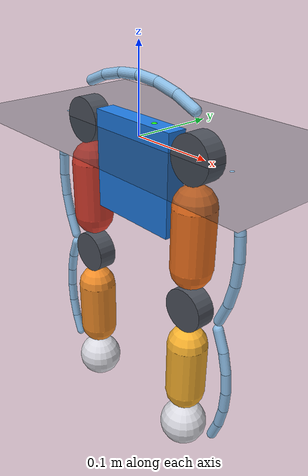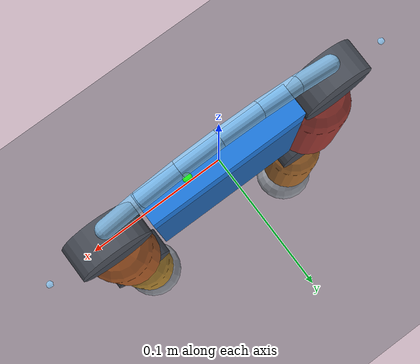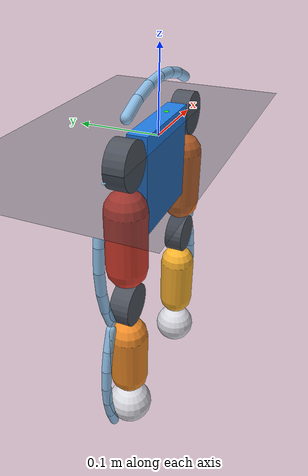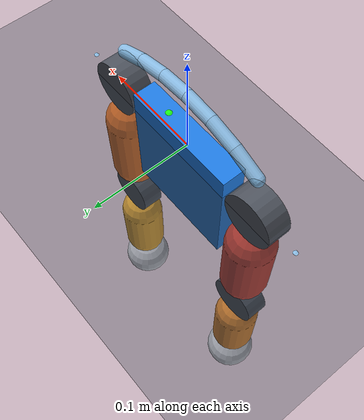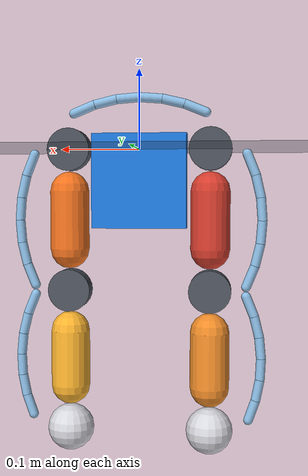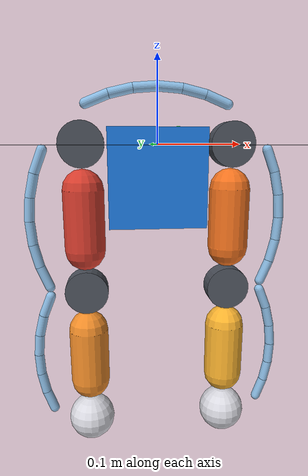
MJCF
<mujoco model="curl_robot_2d">

  <!-- 使用弧度和 SI 单位，重力沿 -z。 -->
  <compiler angle="radian" autolimits="true"/>
  <option timestep="0.001" gravity="0 0 -9.81"
          integrator="implicitfast" cone="elliptic"
          iterations="20" ls_iterations="10"/>

  <!-- 以下设置只影响渲染，不影响动力学。 -->
  <visual>
    <global azimuth="90" elevation="0" offwidth="960" offheight="720"/>
    <rgba com="0.1 1 0.1 1" contactpoint="1 0.2 0.1 1"
          contactforce="1 0.7 0.1 1"/>
  </visual>

  <!-- 程序生成的天空和地面纹理；项目不依赖外部 mesh。 -->
  <asset>
    <texture type="skybox" builtin="gradient" rgb1=".18 .23 .30"
             rgb2=".02 .03 .05" width="512" height="512"/>
    <texture name="grid" type="2d" builtin="checker" width="512"
             height="512" rgb1=".18 .22 .27" rgb2=".10 .13 .17"/>
    <material name="ground" texture="grid" texrepeat="1 1"
              texuniform="true" reflectance="0.05"/>
  </asset>

  <default>
    <!--
      bit 1 = 地面，bit 2 = 结构代理，bit 4 = 弧壳。
      结构和弧壳都与地面以及非相邻机器人刚体碰撞；MuJoCo 默认
      过滤同一 body 和父子 body，避免关节两侧的预期邻接误碰。
    -->
    <joint limited="true"/>
    <geom contype="0" conaffinity="1" condim="3"
          friction="0.8 0.02 0.01"
          solref="0.01 1" solimp="0.9 0.95 0.001"/>
    <default class="hip_joint">
      <!--
        左右两个同步髋电机合并为一个二维自由度。弧壳端部已经缩短，
        collision-compatible range 恢复为源模型建议安全范围。
      -->
      <joint damping="0.02"
             armature="0.0032"
             range="-1.12 2.41"/>
    </default>
    <default class="knee_joint">
      <!-- 等效膝关节正角度表示向内蜷缩。 -->
      <joint damping="0.02"
             armature="0.0032"
             range="-0.61 2.69"/>
    </default>
    <default class="paired_servo">
      <!--
        左右电机对的等效伺服：最大力矩 +/-6 N m，
        PD 增益取两个源电机之和。
      -->
      <general forcelimited="true" forcerange="-6 6"
               ctrllimited="true"
               gainprm="10 0 0"
               biastype="affine"
               biasprm="0 -10 -0.2"/>
    </default>
    <default class="rolling_shell">
      <!--
        第一版弧壳由短 capsule 拼接。body 已显式给出 inertial，
        因而这些 geom 目前只改变外形和接触，不增加质量或惯量。
      -->
      <geom type="capsule" size="0.006"
            contype="4" conaffinity="7"
            solref="0.003 1" solimp="0.95 0.99 0.001"
            group="1" rgba="0.55 0.78 0.95 0.88"/>
    </default>
    <default class="structure_collision">
      <!-- 有限厚度结构代理；参与地面与选择性机器人自碰撞。 -->
      <geom contype="2" conaffinity="7"
            solref="0.003 1" solimp="0.95 0.99 0.001"/>
    </default>
  </default>

  <worldbody>
    <!-- 固定侧视相机沿 +y 观察 x-z 平面。 -->
    <light name="key" pos="-0.4 -1.0 1.2" dir="0.2 0.8 -1"
           diffuse="0.9 0.9 0.9"/>
    <camera name="side" pos="0 -0.75 0.18"
            xyaxes="1 0 0 0 0 1"/>

    <!-- 地面是当前唯一 contype=1 的碰撞物体。 -->
    <geom name="floor" type="plane" size="2 2 0.05"
          contype="1" conaffinity="1" material="ground"/>

    <!--
      Torso 是五连杆树的根。简化 capsule 的中心线正好连接前后髋
      锚点，因此 Torso 边与四条腿边等长。
    -->
    <body name="torso" pos="0 0 0">
      <!-- 平面复合根：x slide + z slide + 绕 y 的 hinge。 -->
      <joint name="root_x" type="slide" axis="1 0 0" limited="false"
             damping="0.01"/>
      <joint name="root_z" type="slide" axis="0 0 1" limited="false"
             damping="0.01"/>
      <joint name="root_pitch" type="hinge" axis="0 1 0" limited="false"
             damping="0.01"/>
      <inertial pos="0.025 0 0.015"
                mass="1.506"
                diaginertia="0.0085 0.0085 0.0024"/>
      <geom name="torso_proxy" type="box" class="structure_collision"
            pos="0 0 -0.04"
            size="0.06 0.012 0.06"
            rgba="0.12 0.48 0.88 1"/>
      <geom name="torso_shell_00" class="rolling_shell"
            fromto="-0.084 0 0.04556380091 -0.05712080748 0 0.05641014695"/>
      <geom name="torso_shell_01" class="rolling_shell"
            fromto="-0.05712080748 0 0.05641014695 -0.02889983531 0 0.06302157212"/>
      <geom name="torso_shell_02" class="rolling_shell"
            fromto="-0.02889983531 0 0.06302157212 0 0 0.06524277266"/>
      <geom name="torso_shell_03" class="rolling_shell"
            fromto="0 0 0.06524277266 0.02889983531 0 0.06302157212"/>
      <geom name="torso_shell_04" class="rolling_shell"
            fromto="0.02889983531 0 0.06302157212 0.05712080748 0 0.05641014695"/>
      <geom name="torso_shell_05" class="rolling_shell"
            fromto="0.05712080748 0 0.05641014695 0.084 0 0.04556380091"/>
      <site name="torso_com" type="sphere"
            pos="0.025 0 0.015"
            size="0.006" rgba="0.1 1 0.1 1"/>

      <!--
        前腿链：髋关节正转使膝向外（+x），膝关节正转使足端向内。
      -->
      <body name="front_thigh" pos="0.09 0 0">
        <joint name="front_hip" type="hinge" axis="0 -1 0"
               class="hip_joint"/>
        <inertial pos="0 0 -0.0573059111"
                  mass="0.732"
                  diaginertia="0.002673 0.002673 0.0002"/>
        <geom name="front_thigh_proxy" type="capsule" class="structure_collision"
              fromto="0 0 -0.053 0 0 -0.127"
              size="0.025"
              rgba="0.95 0.45 0.12 1"/>
        <geom name="front_hip_motor" type="cylinder" class="structure_collision"
              size="0.027 0.012"
              euler="1.570796327 0 0" rgba="0.30 0.32 0.36 1"/>
        <geom name="front_thigh_shell_00" class="rolling_shell"
              fromto="0.04556380091 0 -0.006 0.05641014695 0 -0.03287919252"/>
        <geom name="front_thigh_shell_01" class="rolling_shell"
              fromto="0.05641014695 0 -0.03287919252 0.06302157212 0 -0.06110016469"/>
        <geom name="front_thigh_shell_02" class="rolling_shell"
              fromto="0.06302157212 0 -0.06110016469 0.06524277266 0 -0.09"/>
        <geom name="front_thigh_shell_03" class="rolling_shell"
              fromto="0.06524277266 0 -0.09 0.06302157212 0 -0.1188998353"/>
        <geom name="front_thigh_shell_04" class="rolling_shell"
              fromto="0.06302157212 0 -0.1188998353 0.05641014695 0 -0.1471208075"/>
        <geom name="front_thigh_shell_05" class="rolling_shell"
              fromto="0.05641014695 0 -0.1471208075 0.04556380091 0 -0.174"/>
        <site name="front_hip_site" type="sphere" size="0.006"
              rgba="1 0.85 0.1 1"/>
        <site name="front_thigh_com" type="sphere"
              pos="0 0 -0.0573059111"
              size="0.005" rgba="0.1 1 0.1 1"/>

        <body name="front_shank" pos="0 0 -0.18">
          <joint name="front_knee" type="hinge" axis="0 1 0"
                 class="knee_joint"/>
          <inertial pos="0 0 -0.0897967059"
                    mass="0.1"
                    diaginertia="0.000155075 0.000155075 2e-05"/>
          <geom name="front_shank_proxy" type="capsule" class="structure_collision"
                fromto="0 0 -0.053 0 0 -0.124"
                size="0.025"
                rgba="0.98 0.70 0.18 1"/>
          <geom name="front_knee_motor" type="cylinder" class="structure_collision"
                size="0.027 0.012"
                euler="1.570796327 0 0" rgba="0.30 0.32 0.36 1"/>
          <geom name="front_shank_shell_00" class="rolling_shell"
                fromto="0.04556380091 0 -0.006 0.05589975364 0 -0.03129260547"/>
          <geom name="front_shank_shell_01" class="rolling_shell"
                fromto="0.05589975364 0 -0.03129260547 0.06248318646 0 -0.05781064127"/>
          <geom name="front_shank_shell_02" class="rolling_shell"
                fromto="0.06248318646 0 -0.05781064127 0.06517667991 0 -0.08500058248"/>
          <geom name="front_shank_shell_03" class="rolling_shell"
                fromto="0.06517667991 0 -0.08500058248 0.0639240113 0 -0.1122948792"/>
          <geom name="front_shank_shell_04" class="rolling_shell"
                fromto="0.0639240113 0 -0.1122948792 0.05875132823 0 -0.1391238031"/>
          <geom name="front_shank_shell_05" class="rolling_shell"
                fromto="0.05875132823 0 -0.1391238031 0.04976660283 0 -0.1649273401"/>
          <geom name="front_foot_proxy" type="sphere" class="structure_collision"
                pos="0 0 -0.18"
                size="0.03"
                rgba="0.85 0.85 0.88 1"/>
          <site name="front_knee_site" type="sphere" size="0.006"
                rgba="1 0.85 0.1 1"/>
          <site name="front_shank_com" type="sphere"
                pos="0 0 -0.0897967059"
                size="0.005" rgba="0.1 1 0.1 1"/>
          <site name="front_foot_site"
                pos="0 0 -0.18" size="0.004"/>
        </body>
      </body>

      <!--
        后腿链通过反转两个 hinge 轴镜像前腿，因此前后腿可以共用
        相同的等效关节角约定。
      -->
      <body name="rear_thigh" pos="-0.09 0 0">
        <joint name="rear_hip" type="hinge" axis="0 1 0"
               class="hip_joint"/>
        <inertial pos="0 0 -0.0573059111"
                  mass="0.732"
                  diaginertia="0.002673 0.002673 0.0002"/>
        <geom name="rear_thigh_proxy" type="capsule" class="structure_collision"
              fromto="0 0 -0.053 0 0 -0.127"
              size="0.025"
              rgba="0.84 0.24 0.18 1"/>
        <geom name="rear_hip_motor" type="cylinder" class="structure_collision"
              size="0.027 0.012"
              euler="1.570796327 0 0" rgba="0.30 0.32 0.36 1"/>
        <geom name="rear_thigh_shell_00" class="rolling_shell"
              fromto="-0.04556380091 0 -0.006 -0.05641014695 0 -0.03287919252"/>
        <geom name="rear_thigh_shell_01" class="rolling_shell"
              fromto="-0.05641014695 0 -0.03287919252 -0.06302157212 0 -0.06110016469"/>
        <geom name="rear_thigh_shell_02" class="rolling_shell"
              fromto="-0.06302157212 0 -0.06110016469 -0.06524277266 0 -0.09"/>
        <geom name="rear_thigh_shell_03" class="rolling_shell"
              fromto="-0.06524277266 0 -0.09 -0.06302157212 0 -0.1188998353"/>
        <geom name="rear_thigh_shell_04" class="rolling_shell"
              fromto="-0.06302157212 0 -0.1188998353 -0.05641014695 0 -0.1471208075"/>
        <geom name="rear_thigh_shell_05" class="rolling_shell"
              fromto="-0.05641014695 0 -0.1471208075 -0.04556380091 0 -0.174"/>
        <site name="rear_hip_site" type="sphere" size="0.006"
              rgba="1 0.85 0.1 1"/>
        <site name="rear_thigh_com" type="sphere"
              pos="0 0 -0.0573059111"
              size="0.005" rgba="0.1 1 0.1 1"/>

        <body name="rear_shank" pos="0 0 -0.18">
          <joint name="rear_knee" type="hinge" axis="0 -1 0"
                 class="knee_joint"/>
          <inertial pos="0 0 -0.0897967059"
                    mass="0.1"
                    diaginertia="0.000155075 0.000155075 2e-05"/>
          <geom name="rear_shank_proxy" type="capsule" class="structure_collision"
                fromto="0 0 -0.053 0 0 -0.124"
                size="0.025"
                rgba="0.94 0.55 0.16 1"/>
          <geom name="rear_knee_motor" type="cylinder" class="structure_collision"
                size="0.027 0.012"
                euler="1.570796327 0 0" rgba="0.30 0.32 0.36 1"/>
          <geom name="rear_shank_shell_00" class="rolling_shell"
                fromto="-0.04556380091 0 -0.006 -0.05589975364 0 -0.03129260547"/>
          <geom name="rear_shank_shell_01" class="rolling_shell"
                fromto="-0.05589975364 0 -0.03129260547 -0.06248318646 0 -0.05781064127"/>
          <geom name="rear_shank_shell_02" class="rolling_shell"
                fromto="-0.06248318646 0 -0.05781064127 -0.06517667991 0 -0.08500058248"/>
          <geom name="rear_shank_shell_03" class="rolling_shell"
                fromto="-0.06517667991 0 -0.08500058248 -0.0639240113 0 -0.1122948792"/>
          <geom name="rear_shank_shell_04" class="rolling_shell"
                fromto="-0.0639240113 0 -0.1122948792 -0.05875132823 0 -0.1391238031"/>
          <geom name="rear_shank_shell_05" class="rolling_shell"
                fromto="-0.05875132823 0 -0.1391238031 -0.04976660283 0 -0.1649273401"/>
          <geom name="rear_foot_proxy" type="sphere" class="structure_collision"
                pos="0 0 -0.18"
                size="0.03"
                rgba="0.85 0.85 0.88 1"/>
          <site name="rear_knee_site" type="sphere" size="0.006"
                rgba="1 0.85 0.1 1"/>
          <site name="rear_shank_com" type="sphere"
                pos="0 0 -0.0897967059"
                size="0.005" rgba="0.1 1 0.1 1"/>
          <site name="rear_foot_site"
                pos="0 0 -0.18" size="0.004"/>
        </body>
      </body>
    </body>
  </worldbody>

  <contact>
    <!--
      compact 中允许两个有限尺寸足端表面接触。显式 pair 使用更硬的
      内部接触参数，减少软接触导致的数值穿透；并不把足端焊接。
    -->
    <pair name="front_rear_foot_contact"
          geom1="front_foot_proxy" geom2="rear_foot_proxy"
          condim="3" friction="0.8 0.02 0.01"
          solref="0.002 1" solimp="0.97 0.995 0.001"/>
  </contact>

  <!-- 四个成对位置伺服；ctrl 表示目标关节角。 -->
  <actuator>
    <general name="front_hip_servo" joint="front_hip"
             class="paired_servo"
             ctrlrange="-1.12 2.41"/>
    <general name="front_knee_servo" joint="front_knee"
             class="paired_servo"
             ctrlrange="-0.61 2.69"/>
    <general name="rear_hip_servo" joint="rear_hip"
             class="paired_servo"
             ctrlrange="-1.12 2.41"/>
    <general name="rear_knee_servo" joint="rear_knee"
             class="paired_servo"
             ctrlrange="-0.61 2.69"/>
  </actuator>

  <!--
    同一模型中的刚性实验模式。四个约束默认关闭，不影响正常 servo
    仿真；被动刚性基准脚本在运行时通过 data.eq_active 开启它们，
    并同时关闭 actuator。joint2 省略时，polycoef[0] 是相对 qpos0
    的固定目标角。
  -->
  <equality>
    <joint name="lock_front_hip_compact" joint1="front_hip"
           polycoef="0.3141592654 0 0 0 0"
           active="false" solref="0.004 1"
           solimp="0.999 0.9999 0.001"/>
    <joint name="lock_front_knee_compact" joint1="front_knee"
           polycoef="1.011720272 0 0 0 0"
           active="false" solref="0.004 1"
           solimp="0.999 0.9999 0.001"/>
    <joint name="lock_rear_hip_compact" joint1="rear_hip"
           polycoef="0.3141592654 0 0 0 0"
           active="false" solref="0.004 1"
           solimp="0.999 0.9999 0.001"/>
    <joint name="lock_rear_knee_compact" joint1="rear_knee"
           polycoef="1.011720272 0 0 0 0"
           active="false" solref="0.004 1"
           solimp="0.999 0.9999 0.001"/>
  </equality>

  <!-- 用于诊断和未来 RL 观测的最小传感器集合。 -->
  <sensor>
    <framepos name="torso_position" objtype="body" objname="torso"/>
    <framelinvel name="torso_velocity" objtype="body" objname="torso"/>
    <frameangvel name="torso_angular_velocity" objtype="body" objname="torso"/>
    <jointpos name="front_hip_position" joint="front_hip"/>
    <jointpos name="front_knee_position" joint="front_knee"/>
    <jointpos name="rear_hip_position" joint="rear_hip"/>
    <jointpos name="rear_knee_position" joint="rear_knee"/>
  </sensor>

  <keyframe>
    <!-- 展开姿态：两条腿竖直，两个足端球与地面相切。 -->
    <key name="open"
         qpos="0 0.39 0 0 0 0 0"
         ctrl="0 0 0 0"/>
    <!--
      二维行走检查姿态：前足支撑，后足摆动。它只用于验证展开后的
      外壳间隙与足端工作区，不代表固定的行走控制轨迹。
    -->
    <key name="walk"
         qpos="0 0.3764923464 0 0.35 0.52 0.35 0.78"
         ctrl="0.35 0.52 0.35 0.78"/>
    <!--
      等边 compact 姿态：
        hip 固定为 18 度；
        knee 由有限尺寸足端的表面接触条件反算。
      前后足端属于两条开链，只允许接触，不焊接、不中心重合。
    -->
    <key name="compact"
         qpos="0 0.3391441806 0 0.3141592654 1.011720272 0.3141592654 1.011720272"
         ctrl="0.3141592654 1.011720272 0.3141592654 1.011720272"/>
  </keyframe>
</mujoco>
